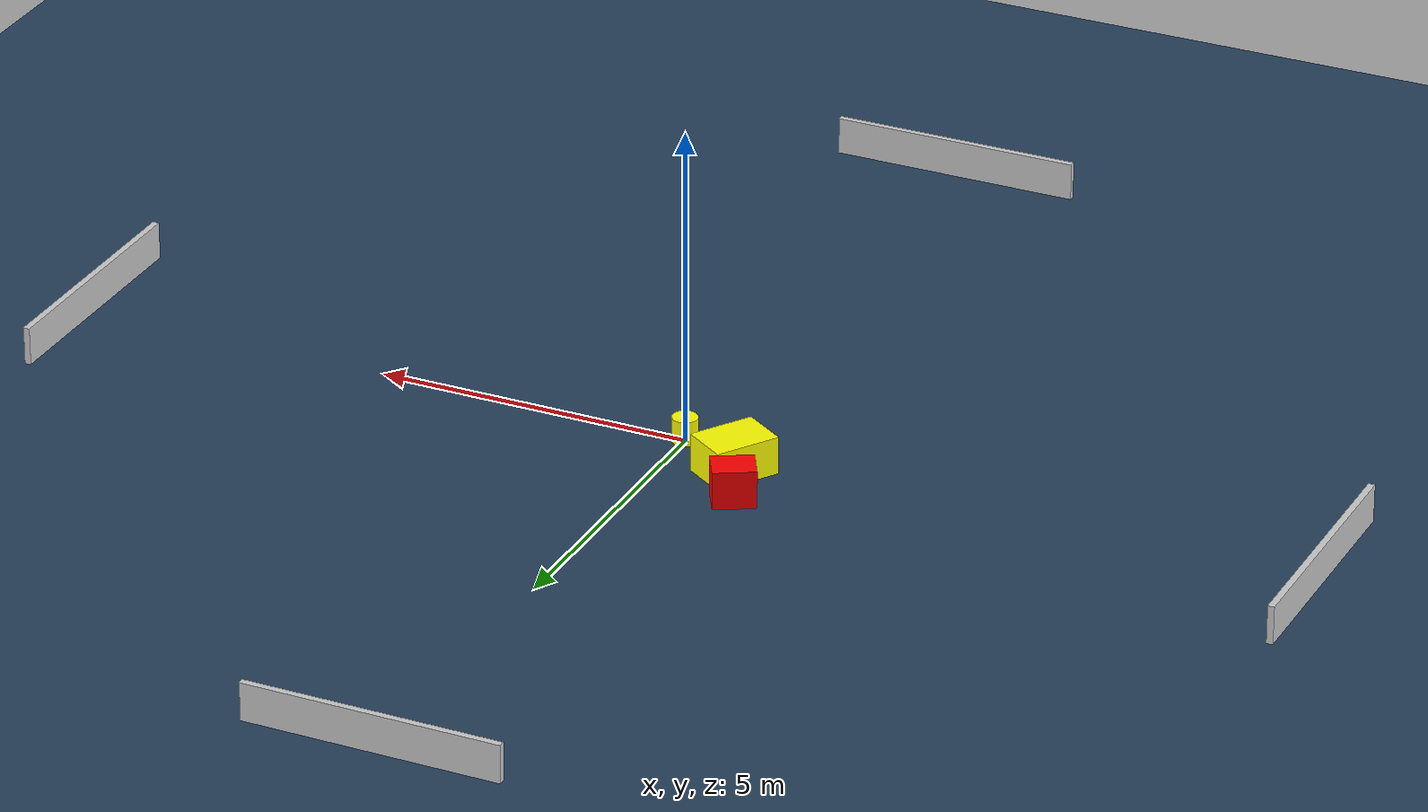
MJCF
<?xml version="1.0" ?>
<mujoco model="generated_environment">
  <option timestep="0.01" integrator="RK4" cone="elliptic"/>
  <default>
    <geom density="1"/>
  </default>
  <asset>
    <texture builtin="gradient" height="3072" name="skybox" rgb1="0.3 0.5 0.7" rgb2="0 0 0" type="skybox" width="512"/>
    <texture builtin="checker" height="300" name="groundplane" rgb1="0.2 0.3 0.4" rgb2="0.1 0.2 0.3" type="2d" width="300"/>
    <material name="groundplane" reflectance="0.2" texrepeat="5 5" texture="groundplane"/>
  </asset>
  <worldbody>
    <light dir="0 0 -1" directional="true" pos="0 0 1.5"/>
    <geom condim="3" friction="0.5 0.005 0.001" material="groundplane" name="floor" pos="0 0 0" size="0 0 0.05" type="plane"/>
    <body name="walls">
      <geom name="wall_1" condim="4" pos="-10.0 0.0 0.3" rgba="0.800000011920929 0.800000011920929 0.800000011920929 1.0" size="0.05 2.0 0.3" type="box"/>
      <geom name="wall_2" condim="4" pos="10.0 0.0 0.3" rgba="0.800000011920929 0.800000011920929 0.800000011920929 1.0" size="0.05 2.0 0.3" type="box"/>
      <geom name="wall_3" condim="4" pos="0.0 -10.0 0.3" rgba="0.800000011920929 0.800000011920929 0.800000011920929 1.0" size="2.0 0.05 0.3" type="box"/>
      <geom name="wall_4" condim="4" pos="0.0 10.0 0.3" rgba="0.800000011920929 0.800000011920929 0.800000011920929 1.0" size="2.0 0.05 0.3" type="box"/>
    </body>
    <body name="robot">
      <joint name="joint_x" type="slide" pos="0 0 0" axis="1 0 0"/>
      <joint name="joint_y" type="slide" pos="0 0 0" axis="0 1 0"/>
      <geom name="robot" type="cylinder" pos="0.0 0.0 0.2" size="0.2 0.2 0.0" mass="5.0" friction="1.0 0.005 0.0001" condim="4" rgba="1.0 1.0 0.0 1.0"/>
    </body>
    <body name="obstacle_1_movable">
      <geom name="obstacle_1_movable" condim="4" pos="-1.0684769038197246 0.572250518748426 0.3" euler="0 0 236.7143816026385" friction="0.0 0.005 0.001" rgba="1.0 1.0 0.0 1.0" size="0.5243498079845683 0.38030375667500194 0.3" type="box" mass="0.1"/>
      <joint type="free"/>
    </body>
    <body name="obstacle_2_static">
      <geom name="obstacle_2_static" condim="4" pos="-1.425379788026953 1.380084541541717 0.3" euler="0 0 119.20418988558029" friction="0.0 0.005 0.001" rgba="1.0 0.0 0.0 1.0" size="0.26788751729118 0.3302368096900018 0.3" type="box"/>
    </body>
  </worldbody>
  <actuator>
    <motor name="actuator_x" joint="joint_x" gear="1" ctrlrange="-1 1"/>
    <motor name="actuator_y" joint="joint_y" gear="1" ctrlrange="-1 1"/>
  </actuator>
</mujoco>
